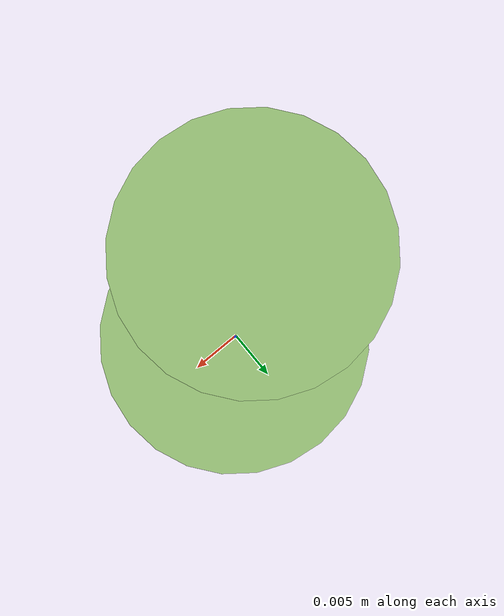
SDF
<?xml version="1.0" ?>
<!-- |    This document was autogenerated by xmacro from data/veggie_template/veggie_base.sdf.xacro  | -->
<!-- |    EDITING THIS FILE BY HAND IS NOT RECOMMENDED                                               | -->
<sdf version="1.8">
	<!-- Parameters -->
	<!-- Base -->
	<!-- Joint 0 -->
	<!-- Link 1 -->
	<!-- Joint 1 -->
	<!-- Link 2 -->
	<!-- Primitives -->
	<!-- All dimensions are half -->
	<!-- Object -->
	<model name="veggie">
		<!-- link0 -->
		<link name="link0">
			<inertial>
				<mass>0.0046762637725477766</mass>
				<inertia>
					<ixx>2.1772942686010784e-07</ixx>
					<ixy>0</ixy>
					<ixz>0</ixz>
					<iyy>2.1772942686010784e-07</iyy>
					<iyz>0</iyz>
					<izz>3.6434442486823455e-07</izz>
				</inertia>
			</inertial>
			<visual name="link0_visual">
				<pose>0 0 0 0 0 0</pose>
				<geometry>
					<cylinder>
						<radius>0.01248307448472549</radius>
						<length>0.009552234780059479</length>
					</cylinder>
				</geometry>
				<material>
					<ambient>0.659 0.839 0.514 1</ambient>
					<diffuse>0.659 0.839 0.514 1</diffuse>
					<specular>0 0 0 0</specular>
					<emissive>0 0 0 1</emissive>
				</material>
			</visual>
			<collision name="link0_collision">
				<pose>0 0 0 0 0 0 </pose>
				<geometry>
					<cylinder>
						<radius>0.01248307448472549</radius>
						<length>0.009552234780059479</length>
					</cylinder>
				</geometry>
			</collision>
		</link>
		<!-- link1 -->
		<joint name="joint0" type="fixed">
			<pose relative_to="link0">-0.0063450983964108525 -0.004979528055159249 0.0009179208102645626 0.0 0.0 0.0</pose>
			<parent>link0</parent>
			<child>link1</child>
		</joint>
		<link name="link1">
			<pose relative_to="joint0">0 0 0 0 0 0</pose>
			<inertial>
				<mass>0.004889898468620256</mass>
				<inertia>
					<ixx>2.5702248616608995e-07</ixx>
					<ixy>0</ixy>
					<ixz>0</ixz>
					<iyy>2.5702248616608995e-07</iyy>
					<iyz>0</iyz>
					<izz>4.5770530156192885e-07</izz>
				</inertia>
			</inertial>
			<visual name="link1_visual">
				<pose>0 0 0 0 0 0</pose>
				<geometry>
					<cylinder>
						<radius>0.013682266598534856</radius>
						<length>0.008314437187250098</length>
					</cylinder>
				</geometry>
				<material>
					<ambient>0.659 0.839 0.514 1</ambient>
					<diffuse>0.659 0.839 0.514 1</diffuse>
					<specular>0 0 0 0</specular>
					<emissive>0 0 0 1</emissive>
				</material>
			</visual>
			<collision name="link1_collision">
				<pose>0 0 0 0 0 0 </pose>
				<geometry>
					<cylinder>
						<radius>0.013682266598534856</radius>
						<length>0.008314437187250098</length>
					</cylinder>
				</geometry>
			</collision>
		</link>
		<!-- link2 -->
	</model>
</sdf>
